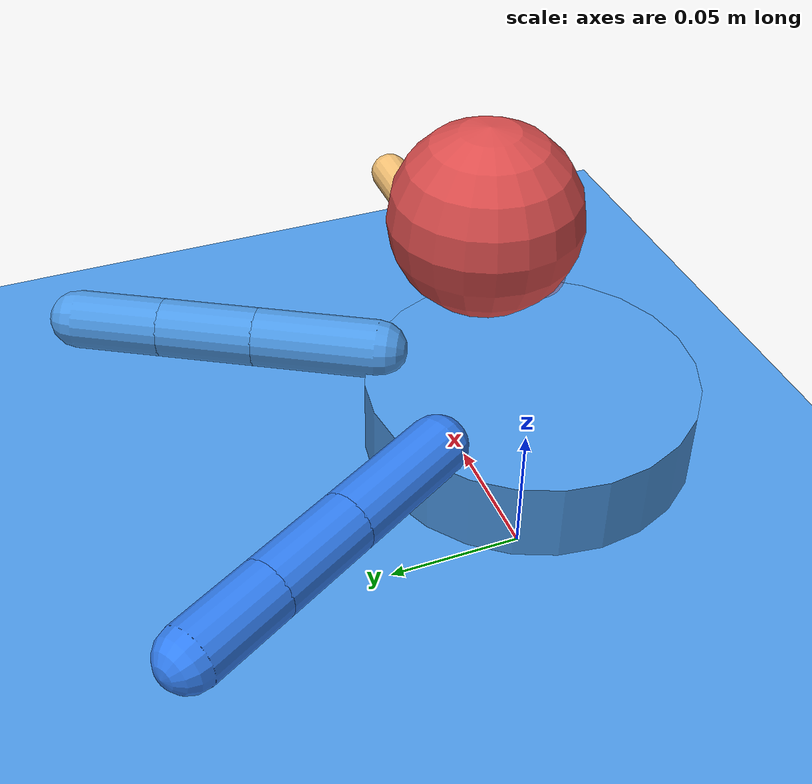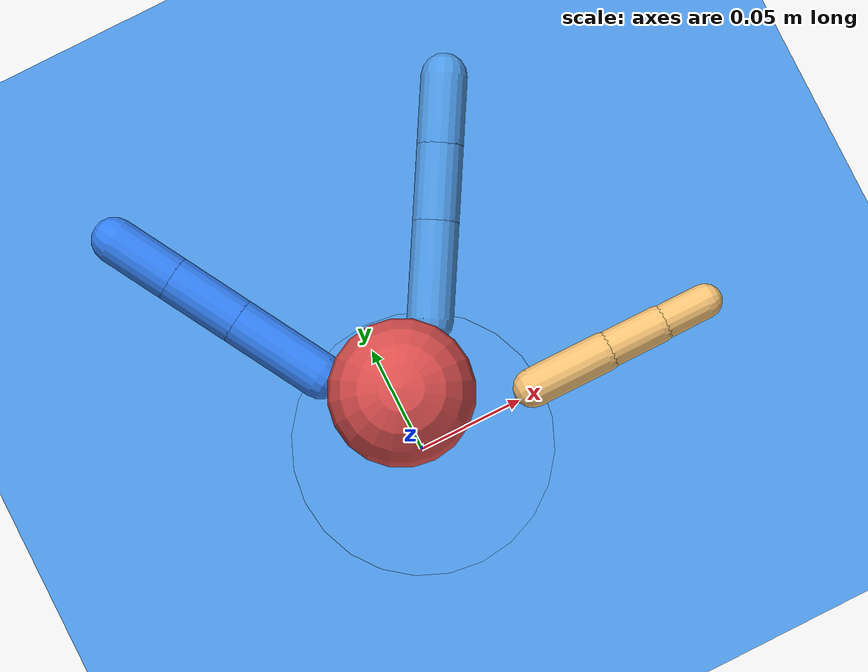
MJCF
<mujoco model="fully_actuated_dexterous_3finger_hand">
  <compiler angle="radian" autolimits="true"/>
  <option timestep="0.002" gravity="0 0 -9.81" integrator="implicitfast" iterations="80"/>

  <visual>
    <headlight ambient="0.5 0.5 0.5" diffuse="0.6 0.6 0.6" specular="0.1 0.1 0.1"/>
  </visual>

  <default>
    <joint type="hinge" damping="0.18" armature="0.00025" stiffness="0.6" limited="true"/>
    <geom type="capsule" size="0.010" density="350" friction="1.2 0.02 0.002"
          contype="1" conaffinity="1" rgba="0.3 0.6 0.9 1"/>

    <default class="finger_base_joint">
      <joint axis="0 0 1" range="-0.25 1.05"/>
    </default>
    <default class="finger_proximal_joint">
      <joint axis="0 1 0" range="-0.15 1.45"/>
    </default>
    <default class="finger_distal_joint">
      <joint axis="0 1 0" range="-0.10 1.25"/>
    </default>
    <default class="thumb_base_joint">
      <joint axis="0 0 1" range="-0.20 1.10"/>
    </default>
    <default class="thumb_proximal_joint">
      <joint axis="0 1 0" range="-0.15 1.40"/>
    </default>
    <default class="thumb_distal_joint">
      <joint axis="0 1 0" range="-0.10 1.20"/>
    </default>
  </default>

  <asset>
    <texture type="skybox" builtin="gradient" rgb1="1 1 1" rgb2="0.7 0.8 0.9" width="256" height="256"/>
    <texture name="grid" type="2d" builtin="checker" width="512" height="512"
             rgb1="0.86 0.86 0.86" rgb2="0.72 0.72 0.72"/>
    <material name="palm_mat" rgba="0.2 0.2 0.2 1"/>
    <material name="obj_mat" rgba="0.85 0.3 0.3 1"/>
    <material name="grid_mat" texture="grid" texrepeat="8 8" texuniform="true"
              reflectance="0.15"/>
  </asset>

  <worldbody>
    <light pos="0 0 1.5" dir="0 0 -1"/>
    <geom name="floor" type="plane" size="1 1 0.1" pos="0 0 0" material="grid_mat"/>

    <body name="palm" pos="0 0 0.065">
      <geom name="palm_main" type="cylinder" size="0.056 0.014" pos="0 0 0" material="palm_mat"/>
      <site name="grasp_center" pos="0 0 0.055" size="0.008" rgba="1 0.2 0.2 0.35"/>

      <body name="thumb_base" pos="0.052 0.000 0.018" euler="0 0 3.1415926536">
        <joint name="thumb_j1" class="thumb_base_joint"/>
        <geom size="0.0085" fromto="0 0 0 -0.034 0 0" rgba="0.95 0.75 0.45 1"/>
        <body name="thumb_link2" pos="-0.034 0 0">
          <joint name="thumb_j2" class="thumb_proximal_joint"/>
          <geom size="0.0080" fromto="0 0 0 -0.026 0 0" rgba="0.95 0.75 0.45 1"/>
          <body name="thumb_link3" pos="-0.026 0 0">
            <joint name="thumb_j3" class="thumb_distal_joint"/>
            <geom size="0.0075" fromto="0 0 0 -0.022 0 0" rgba="0.95 0.75 0.45 1"/>
            <site name="thumb_tip" pos="-0.022 0 0" size="0.006" rgba="1 0.6 0 1"/>
          </body>
        </body>
      </body>

      <body name="index_base" pos="0.026 0.045 0.018" euler="0 0 -2.0943951024">
        <joint name="index_j1" class="finger_base_joint"/>
        <geom fromto="0 0 0 -0.042 0 0" rgba="0.3 0.6 0.9 1"/>
        <body name="index_link2" pos="-0.042 0 0">
          <joint name="index_j2" class="finger_proximal_joint"/>
          <geom fromto="0 0 0 -0.033 0 0" rgba="0.3 0.6 0.9 1"/>
          <body name="index_link3" pos="-0.033 0 0">
            <joint name="index_j3" class="finger_distal_joint"/>
            <geom fromto="0 0 0 -0.030 0 0" rgba="0.3 0.6 0.9 1"/>
            <site name="index_tip" pos="-0.030 0 0" size="0.006" rgba="0 1 0 1"/>
          </body>
        </body>
      </body>

      <body name="middle_base" pos="-0.026 0.045 0.018" euler="0 0 -1.0471975512">
        <joint name="middle_j1" class="finger_base_joint"/>
        <geom fromto="0 0 0 -0.042 0 0" rgba="0.2 0.5 0.95 1"/>
        <body name="middle_link2" pos="-0.042 0 0">
          <joint name="middle_j2" class="finger_proximal_joint"/>
          <geom fromto="0 0 0 -0.033 0 0" rgba="0.2 0.5 0.95 1"/>
          <body name="middle_link3" pos="-0.033 0 0">
            <joint name="middle_j3" class="finger_distal_joint"/>
            <geom fromto="0 0 0 -0.030 0 0" rgba="0.2 0.5 0.95 1"/>
            <site name="middle_tip" pos="-0.030 0 0" size="0.006" rgba="0 0.5 1 1"/>
          </body>
        </body>
      </body>
    </body>

    <body name="target_ball" pos="0.000 0.020 0.145">
      <freejoint/>
      <geom type="sphere" size="0.030" density="260" friction="1.0 0.02 0.002"
            rgba="0.85 0.3 0.3 1" material="obj_mat"/>
    </body>
  </worldbody>

  <contact>
    <exclude body1="palm" body2="thumb_base"/>
    <exclude body1="palm" body2="index_base"/>
    <exclude body1="palm" body2="middle_base"/>
  </contact>

  <actuator>
    <position name="thumb_a1" joint="thumb_j1" ctrlrange="-0.20 1.10" kp="32" kv="6"/>
    <position name="thumb_a2" joint="thumb_j2" ctrlrange="-0.15 1.40" kp="34" kv="6"/>
    <position name="thumb_a3" joint="thumb_j3" ctrlrange="-0.10 1.20" kp="28" kv="5"/>

    <position name="index_a1" joint="index_j1" ctrlrange="-0.25 1.05" kp="34" kv="6"/>
    <position name="index_a2" joint="index_j2" ctrlrange="-0.15 1.45" kp="36" kv="6"/>
    <position name="index_a3" joint="index_j3" ctrlrange="-0.10 1.25" kp="30" kv="5"/>

    <position name="middle_a1" joint="middle_j1" ctrlrange="-0.25 1.05" kp="34" kv="6"/>
    <position name="middle_a2" joint="middle_j2" ctrlrange="-0.15 1.45" kp="36" kv="6"/>
    <position name="middle_a3" joint="middle_j3" ctrlrange="-0.10 1.25" kp="30" kv="5"/>
  </actuator>
</mujoco>
